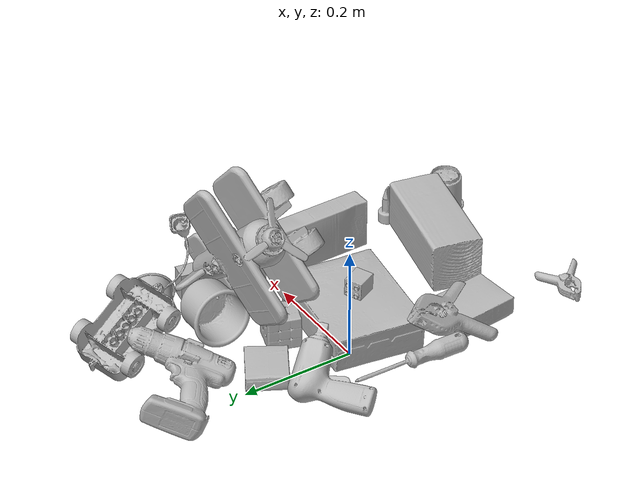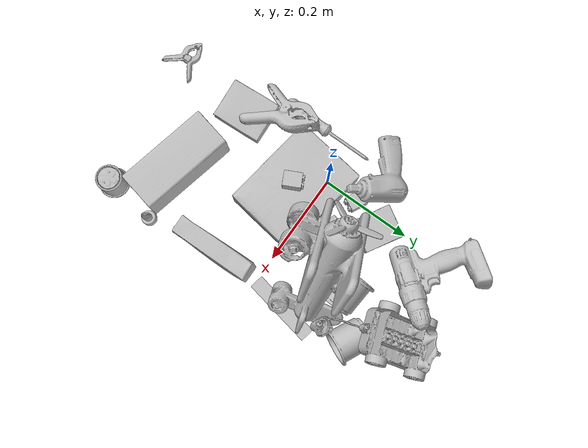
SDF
<sdf version="1.4">
  <world name="default">
    <light name="light1" type="point">
      <pose>0 0 1 0 0 0</pose>
      <diffuse>3 3 3 1</diffuse>
      <specular>3 3 3 1</specular>
    </light>
    <light name="light2" type="point">
      <pose>0 0.5 2 0 0 0</pose>
      <diffuse>1 1 1 1</diffuse>
      <specular>1 1 1 1</specular>
    </light>
    <light name="light3" type="point">
      <pose>0 0.5 2 0 0 0</pose>
      <diffuse>3 3 3 1</diffuse>
      <specular>3 3 3 1</specular>
    </light>
    <scene>
      <ambient>0.7 0.7 0.7</ambient>
    </scene>
    <model name="box21">
      <link name="link_box21">
        <collision name="default">
          <geometry>
            <mesh>
              <uri>model://cracker_box/collision_meshes/collision.obj</uri>
              <scale>1.0 1.0 1.0</scale>
            </mesh>
          </geometry>
          <surface>
            <friction>
              <ode>
                <mu>0.5</mu>
                <mu2>0.5</mu2>
              </ode>
            </friction>
          <contact>
        <ode>
            <max_vel>0</max_vel>
            <min_depth>0.0001</min_depth>
            <kp>1e8</kp>
        </ode>
    </contact></surface>
        </collision>
        <visual name="default">
          <geometry>
            <mesh>
              <uri>model://cracker_box/visual_meshes/visual.dae</uri>
              <scale>1.0 1.0 1.0</scale>
            </mesh>
          </geometry>
        </visual>
        <inertial>
          <mass>2.2869980335235596</mass>
          <pose>0.0009464151225984097 0.0002543425071053207 -0.0017029535956680775 -0.0003162075418873318 -0.011106487737663914 0.0025467956997025456</pose>
          <inertia>
            <ixx>0.005817102</ixx>
            <iyy>0.009605178</iyy>
            <izz>0.013707472</izz>
            <ixy>0</ixy>
            <ixz>0</ixz>
            <iyz>0</iyz>
          </inertia>
        </inertial>
      </link>
      <pose>0.05608418211340904 -0.04272518306970596 0.03553152456879616 3.1371903894402067 -0.016545756410445596 -0.1419563407923448</pose>
    </model>
    <model name="box22">
      <link name="link_box22">
        <collision name="default">
          <geometry>
            <mesh>
              <uri>model://pudding_box/collision_meshes/collision.obj</uri>
              <scale>1.0 1.0 1.0</scale>
            </mesh>
          </geometry>
          <surface>
            <friction>
              <ode>
                <mu>0.5</mu>
                <mu2>0.5</mu2>
              </ode>
            </friction>
          <contact>
        <ode>
            <max_vel>0</max_vel>
            <min_depth>0.0001</min_depth>
            <kp>1e8</kp>
        </ode>
    </contact></surface>
        </collision>
        <visual name="default">
          <geometry>
            <mesh>
              <uri>model://pudding_box/visual_meshes/visual.dae</uri>
              <scale>1.0 1.0 1.0</scale>
            </mesh>
          </geometry>
        </visual>
        <inertial>
          <mass>0.5370154976844788</mass>
          <pose>0.0004894821904599667 0.0008067885646596551 -0.0005188827635720372 0.005213101796859606 -0.006603800100757192 0.02007981956729938</pose>
          <inertia>
            <ixx>0.0006070684</ixx>
            <iyy>0.00040843996</iyy>
            <izz>0.00089649507</izz>
            <ixy>0</ixy>
            <ixz>0</ixz>
            <iyz>0</iyz>
          </inertia>
        </inertial>
      </link>
      <pose>-0.020980894565582275 -0.2264954000711441 0.019725780934095383 0.0223496286787643 -0.01139225997813759 -3.0739742360767015</pose>
    </model>
    <model name="box23">
      <link name="link_box23">
        <collision name="default">
          <geometry>
            <mesh>
              <uri>model://jenga/collision_meshes/collision.obj</uri>
              <scale>1.0 1.0 1.0</scale>
            </mesh>
          </geometry>
          <surface>
            <friction>
              <ode>
                <mu>0.5</mu>
                <mu2>0.5</mu2>
              </ode>
            </friction>
          <contact>
        <ode>
            <max_vel>0</max_vel>
            <min_depth>0.0001</min_depth>
            <kp>1e8</kp>
        </ode>
    </contact></surface>
        </collision>
        <visual name="default">
          <geometry>
            <mesh>
              <uri>model://jenga/visual_meshes/visual.dae</uri>
              <scale>1.0 1.0 1.0</scale>
            </mesh>
          </geometry>
        </visual>
        <inertial>
          <mass>0.17325031757354736</mass>
          <pose>-2.502855807051674e-07 -0.0001025000965455547 -4.0923401684267446e-05 0.0 -7.34215461761844e-07 0.0</pose>
          <inertia>
            <ixx>4.7942573e-05</ixx>
            <iyy>0.00032485754</iyy>
            <izz>0.00034681303</izz>
            <ixy>0</ixy>
            <ixz>0</ixz>
            <iyz>0</iyz>
          </inertia>
        </inertial>
      </link>
      <pose>0.2737058699131012 0.07773884385824203 0.024702271446585655 1.5774984129765406 3.951186372165248e-06 1.3820653984583058</pose>
    </model>
    <model name="cup1">
      <link name="link_cup1">
        <collision name="default">
          <geometry>
            <mesh>
              <uri>model://c_cups/collision_meshes/collision.obj</uri>
              <scale>1.0 1.0 1.0</scale>
            </mesh>
          </geometry>
          <surface>
            <friction>
              <ode>
                <mu>0.5</mu>
                <mu2>0.5</mu2>
              </ode>
            </friction>
          <contact>
        <ode>
            <max_vel>0</max_vel>
            <min_depth>0.0001</min_depth>
            <kp>1e8</kp>
        </ode>
    </contact></surface>
        </collision>
        <visual name="default">
          <geometry>
            <mesh>
              <uri>model://c_cups/visual_meshes/visual.dae</uri>
              <scale>1.0 1.0 1.0</scale>
            </mesh>
          </geometry>
        </visual>
        <inertial>
          <mass>0.033937059342861176</mass>
          <pose>0.0007237257086671889 0.002015391131862998 -0.0012750985333696008 0.3021568203324006 0.0134615240317058 -0.08771816491093205</pose>
          <inertia>
            <ixx>2.5238536e-05</ixx>
            <iyy>2.4792533e-05</iyy>
            <izz>2.2320162e-05</izz>
            <ixy>0</ixy>
            <ixz>0</ixz>
            <iyz>0</iyz>
          </inertia>
        </inertial>
      </link>
      <pose>0.26424720883369446 -0.36712321639060974 0.03345847874879837 -3.141566254669418 -1.844844735758113e-05 0.7515508255159931</pose>
    </model>
    <model name="cup2">
      <link name="link_cup2">
        <collision name="default">
          <geometry>
            <mesh>
              <uri>model://f_cups/collision_meshes/collision.obj</uri>
              <scale>1.0 1.0 1.0</scale>
            </mesh>
          </geometry>
          <surface>
            <friction>
              <ode>
                <mu>0.5</mu>
                <mu2>0.5</mu2>
              </ode>
            </friction>
          <contact>
        <ode>
            <max_vel>0</max_vel>
            <min_depth>0.0001</min_depth>
            <kp>1e8</kp>
        </ode>
    </contact></surface>
        </collision>
        <visual name="default">
          <geometry>
            <mesh>
              <uri>model://f_cups/visual_meshes/visual.dae</uri>
              <scale>1.0 1.0 1.0</scale>
            </mesh>
          </geometry>
        </visual>
        <inertial>
          <mass>0.10278050601482391</mass>
          <pose>-0.003171466989442706 -0.0006240068469196558 -0.003655537962913513 0.7862283183637603 -0.2607933822369466 -0.1823733550036739</pose>
          <inertia>
            <ixx>9.661645e-05</ixx>
            <iyy>0.00010135175</iyy>
            <izz>0.000105510015</izz>
            <ixy>0</ixy>
            <ixz>0</ixz>
            <iyz>0</iyz>
          </inertia>
        </inertial>
      </link>
      <pose>0.2446931153535843 0.22683578729629517 0.03712514042854309 1.467838776976157 0.02605379706472619 1.1082995658050698</pose>
    </model>
    <model name="box11">
      <link name="link_box11">
        <collision name="default">
          <geometry>
            <mesh>
              <uri>model://wood_block/collision_meshes/collision.obj</uri>
              <scale>1.0 1.0 1.0</scale>
            </mesh>
          </geometry>
          <surface>
            <friction>
              <ode>
                <mu>0.5</mu>
                <mu2>0.5</mu2>
              </ode>
            </friction>
          <contact>
        <ode>
            <max_vel>0</max_vel>
            <min_depth>0.0001</min_depth>
            <kp>1e8</kp>
        </ode>
    </contact></surface>
        </collision>
        <visual name="default">
          <geometry>
            <mesh>
              <uri>model://wood_block/visual_meshes/visual.dae</uri>
              <scale>1.0 1.0 1.0</scale>
            </mesh>
          </geometry>
        </visual>
        <inertial>
          <mass>2.321592330932617</mass>
          <pose>-5.813315056002466e-06 -0.000570809468626976 0.0002640858292579651 -0.052209755297172346 -0.005192694580027673 -0.006861376555374886</pose>
          <inertia>
            <ixx>0.0031066423</ixx>
            <iyy>0.009813884</iyy>
            <izz>0.009777175</izz>
            <ixy>0</ixy>
            <ixz>0</ixz>
            <iyz>0</iyz>
          </inertia>
        </inertial>
      </link>
      <pose>0.15636275708675385 -0.27408137917518616 0.0452585332095623 -0.005208037128941541 0.005718877383582208 2.9222755555601134</pose>
    </model>
    <model name="box12">
      <link name="link_box12">
        <collision name="default">
          <geometry>
            <mesh>
              <uri>model://gelatin_box/collision_meshes/collision.obj</uri>
              <scale>1.0 1.0 1.0</scale>
            </mesh>
          </geometry>
          <surface>
            <friction>
              <ode>
                <mu>0.5</mu>
                <mu2>0.5</mu2>
              </ode>
            </friction>
          <contact>
        <ode>
            <max_vel>0</max_vel>
            <min_depth>0.0001</min_depth>
            <kp>1e8</kp>
        </ode>
    </contact></surface>
        </collision>
        <visual name="default">
          <geometry>
            <mesh>
              <uri>model://gelatin_box/visual_meshes/visual.dae</uri>
              <scale>1.0 1.0 1.0</scale>
            </mesh>
          </geometry>
        </visual>
        <inertial>
          <mass>0.2263340801000595</mass>
          <pose>0.0004319618456065655 0.00011156871914863586 -0.00036403207923285663 -0.001050371981036731 -0.004755818689382226 0.016440561334450605</pose>
          <inertia>
            <ixx>0.00015977336</ixx>
            <iyy>0.00011412529</iyy>
            <izz>0.00024321067</izz>
            <ixy>0</ixy>
            <ixz>0</ixz>
            <iyz>0</iyz>
          </inertia>
        </inertial>
      </link>
      <pose>0.024053536355495453 0.14357012510299683 0.01458064280450344 -3.1258656872719555 -0.02571926733954206 -2.0906339021334013</pose>
    </model>
    <model name="box13">
      <link name="link_box13">
        <collision name="default">
          <geometry>
            <mesh>
              <uri>model://sugar_box/collision_meshes/collision.obj</uri>
              <scale>1.0 1.0 1.0</scale>
            </mesh>
          </geometry>
          <surface>
            <friction>
              <ode>
                <mu>0.5</mu>
                <mu2>0.5</mu2>
              </ode>
            </friction>
          <contact>
        <ode>
            <max_vel>0</max_vel>
            <min_depth>0.0001</min_depth>
            <kp>1e8</kp>
        </ode>
    </contact></surface>
        </collision>
        <visual name="default">
          <geometry>
            <mesh>
              <uri>model://sugar_box/visual_meshes/visual.dae</uri>
              <scale>1.0 1.0 1.0</scale>
            </mesh>
          </geometry>
        </visual>
        <inertial>
          <mass>0.4976349174976349</mass>
          <pose>0.0010343727190047503 3.849109634757042e-05 -0.00036364805418998003 -0.0004046263004245651 0.001050663405794887 0.002615379021776999</pose>
          <inertia>
            <ixx>0.0004146281</ixx>
            <iyy>0.0013401629</iyy>
            <izz>0.0016043353</izz>
            <ixy>0</ixy>
            <ixz>0</ixz>
            <iyz>0</iyz>
          </inertia>
        </inertial>
      </link>
      <pose>0.256621390581131 -0.10365595668554306 0.04645008221268654 1.5710196369285763 -4.011402469461751e-05 1.5889302969798071</pose>
    </model>
    <model name="box14">
      <link name="link_box14">
        <collision name="default">
          <geometry>
            <mesh>
              <uri>model://rubiks_cube/collision_meshes/collision.obj</uri>
              <scale>1.0 1.0 1.0</scale>
            </mesh>
          </geometry>
          <surface>
            <friction>
              <ode>
                <mu>0.5</mu>
                <mu2>0.5</mu2>
              </ode>
            </friction>
          <contact>
        <ode>
            <max_vel>0</max_vel>
            <min_depth>0.0001</min_depth>
            <kp>1e8</kp>
        </ode>
    </contact></surface>
        </collision>
        <visual name="default">
          <geometry>
            <mesh>
              <uri>model://rubiks_cube/visual_meshes/visual.dae</uri>
              <scale>1.0 1.0 1.0</scale>
            </mesh>
          </geometry>
        </visual>
        <inertial>
          <mass>0.2531126141548157</mass>
          <pose>2.6721041649580002e-05 5.2569666877388954e-05 -7.264316536748083e-06 -0.05467274129792389 -0.0981396008906979 -0.0344563195746163</pose>
          <inertia>
            <ixx>0.00013986173</ixx>
            <iyy>0.00013920949</iyy>
            <izz>0.00014102072</izz>
            <ixy>0</ixy>
            <ixz>0</ixz>
            <iyz>0</iyz>
          </inertia>
        </inertial>
      </link>
      <pose>0.09248214960098267 0.0728963315486908 0.029375482350587845 1.5694986482404913 -0.025579135205643113 1.2433518818847311</pose>
    </model>
    <model name="cup15">
      <link name="link_cup15">
        <collision name="default">
          <geometry>
            <mesh>
              <uri>model://j_cups/collision_meshes/collision.obj</uri>
              <scale>1.0 1.0 1.0</scale>
            </mesh>
          </geometry>
          <surface>
            <friction>
              <ode>
                <mu>0.5</mu>
                <mu2>0.5</mu2>
              </ode>
            </friction>
          <contact>
        <ode>
            <max_vel>0</max_vel>
            <min_depth>0.0001</min_depth>
            <kp>1e8</kp>
        </ode>
    </contact></surface>
        </collision>
        <visual name="default">
          <geometry>
            <mesh>
              <uri>model://j_cups/visual_meshes/visual.dae</uri>
              <scale>1.0 1.0 1.0</scale>
            </mesh>
          </geometry>
        </visual>
        <inertial>
          <mass>0.12765173614025116</mass>
          <pose>0.0006164864171296358 0.0005398980574682355 -0.0013479006011039019 0.030303852295551513 0.03757989298695449 0.4386938541947324</pose>
          <inertia>
            <ixx>0.00018743309</ixx>
            <iyy>0.00018938213</iyy>
            <izz>0.0002160715</izz>
            <ixy>0</ixy>
            <ixz>0</ixz>
            <iyz>0</iyz>
          </inertia>
        </inertial>
      </link>
      <pose>0.16930647194385529 0.15688706934452057 0.047346387058496475 1.4154647207995092 -0.6376813883536494 -1.5335800209940338</pose>
    </model>
    <model name="toy1">
      <link name="link_toy1">
        <collision name="default">
          <geometry>
            <mesh>
              <uri>model://f_lego_duplo/collision_meshes/collision.obj</uri>
              <scale>1.0 1.0 1.0</scale>
            </mesh>
          </geometry>
          <surface>
            <friction>
              <ode>
                <mu>0.5</mu>
                <mu2>0.5</mu2>
              </ode>
            </friction>
          <contact>
        <ode>
            <max_vel>0</max_vel>
            <min_depth>0.0001</min_depth>
            <kp>1e8</kp>
        </ode>
    </contact></surface>
        </collision>
        <visual name="default">
          <geometry>
            <mesh>
              <uri>model://f_lego_duplo/visual_meshes/visual.dae</uri>
              <scale>1.0 1.0 1.0</scale>
            </mesh>
          </geometry>
        </visual>
        <inertial>
          <mass>0.04013235494494438</mass>
          <pose>2.369376306887716e-05 0.00013393163681030273 0.0018837876850739121 0.029838734112773806 -0.014424842824784668 -0.6756708500035773</pose>
          <inertia>
            <ixx>8.480189e-06</ixx>
            <iyy>8.555736e-06</iyy>
            <izz>7.361164e-06</izz>
            <ixy>0</ixy>
            <ixz>0</ixz>
            <iyz>0</iyz>
          </inertia>
        </inertial>
      </link>
      <pose>0.052375394850969315 -0.050816431641578674 0.08801957964897156 1.4832453032026465 -1.5282756240047362 -2.591456923571942</pose>
    </model>
    <model name="toy2">
      <link name="link_toy2">
        <collision name="default">
          <geometry>
            <mesh>
              <uri>model://e_toy_airplane/collision_meshes/collision.obj</uri>
              <scale>1.0 1.0 1.0</scale>
            </mesh>
          </geometry>
          <surface>
            <friction>
              <ode>
                <mu>0.5</mu>
                <mu2>0.5</mu2>
              </ode>
            </friction>
          <contact>
        <ode>
            <max_vel>0</max_vel>
            <min_depth>0.0001</min_depth>
            <kp>1e8</kp>
        </ode>
    </contact></surface>
        </collision>
        <visual name="default">
          <geometry>
            <mesh>
              <uri>model://e_toy_airplane/visual_meshes/visual.dae</uri>
              <scale>1.0 1.0 1.0</scale>
            </mesh>
          </geometry>
        </visual>
        <inertial>
          <mass>0.030105752870440483</mass>
          <pose>0.00011740480840671808 -2.248285454697907e-05 -0.011187204159796238 0.0055184715057391125 0.009228317867647443 0.150413097465581</pose>
          <inertia>
            <ixx>9.18862e-06</ixx>
            <iyy>9.094625e-06</iyy>
            <izz>2.761542e-06</izz>
            <ixy>0</ixy>
            <ixz>0</ixz>
            <iyz>0</iyz>
          </inertia>
        </inertial>
      </link>
      <pose>0.28214916586875916 -0.2602044939994812 0.03321237117052078 2.1560869549516874e-05 -0.00022464985755369914 0.4172478704046302</pose>
    </model>
    <model name="toy3">
      <link name="link_toy3">
        <collision name="default">
          <geometry>
            <mesh>
              <uri>model://g_lego_duplo/collision_meshes/collision.obj</uri>
              <scale>1.0 1.0 1.0</scale>
            </mesh>
          </geometry>
          <surface>
            <friction>
              <ode>
                <mu>0.5</mu>
                <mu2>0.5</mu2>
              </ode>
            </friction>
          <contact>
        <ode>
            <max_vel>0</max_vel>
            <min_depth>0.0001</min_depth>
            <kp>1e8</kp>
        </ode>
    </contact></surface>
        </collision>
        <visual name="default">
          <geometry>
            <mesh>
              <uri>model://g_lego_duplo/visual_meshes/visual.dae</uri>
              <scale>1.0 1.0 1.0</scale>
            </mesh>
          </geometry>
        </visual>
        <inertial>
          <mass>0.4529305100440979</mass>
          <pose>-0.050047703087329865 0.0017554633086547256 0.0038806775119155645 0.010963008114131517 0.03810824387856379 -0.09653032518797504</pose>
          <inertia>
            <ixx>0.00065630145</ixx>
            <iyy>0.0019842102</iyy>
            <izz>0.0024823209</izz>
            <ixy>0</ixy>
            <ixz>0</ixz>
            <iyz>0</iyz>
          </inertia>
        </inertial>
      </link>
      <pose>0.2077503651380539 0.2574131488800049 0.08616738021373749 -2.980029796509186 -0.4627927529293816 -1.2985583747367173</pose>
    </model>
    <model name="toy4">
      <link name="link_toy4">
        <collision name="default">
          <geometry>
            <mesh>
              <uri>model://b_lego_duplo/collision_meshes/collision.obj</uri>
              <scale>1.0 1.0 1.0</scale>
            </mesh>
          </geometry>
          <surface>
            <friction>
              <ode>
                <mu>0.5</mu>
                <mu2>0.5</mu2>
              </ode>
            </friction>
          <contact>
        <ode>
            <max_vel>0</max_vel>
            <min_depth>0.0001</min_depth>
            <kp>1e8</kp>
        </ode>
    </contact></surface>
        </collision>
        <visual name="default">
          <geometry>
            <mesh>
              <uri>model://b_lego_duplo/visual_meshes/visual.dae</uri>
              <scale>1.0 1.0 1.0</scale>
            </mesh>
          </geometry>
        </visual>
        <inertial>
          <mass>0.018499748781323433</mass>
          <pose>-0.00011053003981942311 -9.15247255761642e-06 0.001929429592564702 -0.037494549291744686 -0.026354734626349716 0.4518828938821803</pose>
          <inertia>
            <ixx>3.786112e-06</ixx>
            <iyy>3.8115643e-06</iyy>
            <izz>3.3733036e-06</izz>
            <ixy>0</ixy>
            <ixz>0</ixz>
            <iyz>0</iyz>
          </inertia>
        </inertial>
      </link>
      <pose>0.0021965354681015015 0.07306746393442154 0.016179900616407394 0.04881541973582449 -1.5624099186709375 2.6461698681508703</pose>
    </model>
    <model name="toy5">
      <link name="link_toy5">
        <collision name="default">
          <geometry>
            <mesh>
              <uri>model://b_toy_airplane/collision_meshes/collision.obj</uri>
              <scale>1.0 1.0 1.0</scale>
            </mesh>
          </geometry>
          <surface>
            <friction>
              <ode>
                <mu>0.5</mu>
                <mu2>0.5</mu2>
              </ode>
            </friction>
          <contact>
        <ode>
            <max_vel>0</max_vel>
            <min_depth>0.0001</min_depth>
            <kp>1e8</kp>
        </ode>
    </contact></surface>
        </collision>
        <visual name="default">
          <geometry>
            <mesh>
              <uri>model://b_toy_airplane/visual_meshes/visual.dae</uri>
              <scale>1.0 1.0 1.0</scale>
            </mesh>
          </geometry>
        </visual>
        <inertial>
          <mass>0.38904744386672974</mass>
          <pose>0.00508136348798871 0.004015582147985697 0.00954306498169899 -0.040018071915393034 -0.04022181905785318 -0.5601502897874057</pose>
          <inertia>
            <ixx>0.00072227366</ixx>
            <iyy>0.0002886998</iyy>
            <izz>0.0008985803</izz>
            <ixy>0</ixy>
            <ixz>0</ixz>
            <iyz>0</iyz>
          </inertia>
        </inertial>
      </link>
      <pose>-0.07141989469528198 0.09347126632928848 0.025333859026432037 0.11828929186060226 -0.4669023196556516 -0.889362055632537</pose>
    </model>
    <model name="toy6">
      <link name="link_toy6">
        <collision name="default">
          <geometry>
            <mesh>
              <uri>model://a_toy_airplane/collision_meshes/collision.obj</uri>
              <scale>1.0 1.0 1.0</scale>
            </mesh>
          </geometry>
          <surface>
            <friction>
              <ode>
                <mu>0.5</mu>
                <mu2>0.5</mu2>
              </ode>
            </friction>
          <contact>
        <ode>
            <max_vel>0</max_vel>
            <min_depth>0.0001</min_depth>
            <kp>1e8</kp>
        </ode>
    </contact></surface>
        </collision>
        <visual name="default">
          <geometry>
            <mesh>
              <uri>model://a_toy_airplane/visual_meshes/visual.dae</uri>
              <scale>1.0 1.0 1.0</scale>
            </mesh>
          </geometry>
        </visual>
        <inertial>
          <mass>2.344027519226074</mass>
          <pose>0.025165099650621414 -0.003707322059199214 -0.0011962436838075519 -0.012016950381748406 -0.14663507119063698 0.004149124939747771</pose>
          <inertia>
            <ixx>0.008512287</ixx>
            <iyy>0.012404123</iyy>
            <izz>0.014523712</izz>
            <ixy>0</ixy>
            <ixz>0</ixz>
            <iyz>0</iyz>
          </inertia>
        </inertial>
      </link>
      <pose>0.1733301728963852 0.10563645511865616 0.14347699284553528 1.546143986072972 -0.7224909777764336 -2.7468494869767275</pose>
    </model>
    <model name="hardware1">
      <link name="link_hardware1">
        <collision name="default">
          <geometry>
            <mesh>
              <uri>model://power_drill/collision_meshes/collision.obj</uri>
              <scale>1.0 1.0 1.0</scale>
            </mesh>
          </geometry>
          <surface>
            <friction>
              <ode>
                <mu>0.5</mu>
                <mu2>0.5</mu2>
              </ode>
            </friction>
          <contact>
        <ode>
            <max_vel>0</max_vel>
            <min_depth>0.0001</min_depth>
            <kp>1e8</kp>
        </ode>
    </contact></surface>
        </collision>
        <visual name="default">
          <geometry>
            <mesh>
              <uri>model://power_drill/visual_meshes/visual.dae</uri>
              <scale>1.0 1.0 1.0</scale>
            </mesh>
          </geometry>
        </visual>
        <inertial>
          <mass>0.3504050374031067</mass>
          <pose>-0.014780547469854355 0.014369429089128971 0.0012414171360433102 0.0046091621872236125 0.004073022304059966 -0.18362696816981472</pose>
          <inertia>
            <ixx>0.001427917</ixx>
            <iyy>0.0005618108</iyy>
            <izz>0.0018858167</izz>
            <ixy>0</ixy>
            <ixz>0</ixz>
            <iyz>0</iyz>
          </inertia>
        </inertial>
      </link>
      <pose>0.03766953945159912 0.31019991636276245 0.04991069436073303 3.10246321060254 -0.37060660772736903 0.8597458236328784</pose>
    </model>
    <model name="hardware2">
      <link name="link_hardware2">
        <collision name="default">
          <geometry>
            <mesh>
              <uri>model://phillips_screwdriver/collision_meshes/collision.obj</uri>
              <scale>1.0 1.0 1.0</scale>
            </mesh>
          </geometry>
          <surface>
            <friction>
              <ode>
                <mu>0.5</mu>
                <mu2>0.5</mu2>
              </ode>
            </friction>
          <contact>
        <ode>
            <max_vel>0</max_vel>
            <min_depth>0.0001</min_depth>
            <kp>1e8</kp>
        </ode>
    </contact></surface>
        </collision>
        <visual name="default">
          <geometry>
            <mesh>
              <uri>model://phillips_screwdriver/visual_meshes/visual.dae</uri>
              <scale>1.0 1.0 1.0</scale>
            </mesh>
          </geometry>
        </visual>
        <inertial>
          <mass>0.06613585352897644</mass>
          <pose>-0.04777182638645172 0.0010362302418798208 -0.000455554953077808 -0.157256923583716 0.005850995849984215 -0.0021567369270283215</pose>
          <inertia>
            <ixx>7.770284e-06</ixx>
            <iyy>9.742579e-05</iyy>
            <izz>9.7508564e-05</izz>
            <ixy>0</ixy>
            <ixz>0</ixz>
            <iyz>0</iyz>
          </inertia>
        </inertial>
      </link>
      <pose>-0.08776441216468811 -0.06603243947029114 0.018213490024209023 -1.7898142791741998 -0.0019652096762834206 1.561949507935197</pose>
    </model>
    <model name="hardware3">
      <link name="link_hardware3">
        <collision name="default">
          <geometry>
            <mesh>
              <uri>model://large_clamp/collision_meshes/collision.obj</uri>
              <scale>1.0 1.0 1.0</scale>
            </mesh>
          </geometry>
          <surface>
            <friction>
              <ode>
                <mu>0.5</mu>
                <mu2>0.5</mu2>
              </ode>
            </friction>
          <contact>
        <ode>
            <max_vel>0</max_vel>
            <min_depth>0.0001</min_depth>
            <kp>1e8</kp>
        </ode>
    </contact></surface>
        </collision>
        <visual name="default">
          <geometry>
            <mesh>
              <uri>model://large_clamp/visual_meshes/visual.dae</uri>
              <scale>1.0 1.0 1.0</scale>
            </mesh>
          </geometry>
        </visual>
        <inertial>
          <mass>0.0812491774559021</mass>
          <pose>0.00636935792863369 0.00035856812610290945 -0.0001839803153416142 -0.0021330695247891995 0.009671592144941876 0.026633191629386817</pose>
          <inertia>
            <ixx>7.1684015e-05</ixx>
            <iyy>0.00013613176</iyy>
            <izz>0.00019693196</izz>
            <ixy>0</ixy>
            <ixz>0</ixz>
            <iyz>0</iyz>
          </inertia>
        </inertial>
      </link>
      <pose>-0.058423567563295364 -0.15002739429473877 0.05801459401845932 2.732606596931881 -0.37971672276059015 1.7500945206347476</pose>
    </model>
    <model name="hardware4">
      <link name="link_hardware4">
        <collision name="default">
          <geometry>
            <mesh>
              <uri>model://medium_clamp/collision_meshes/collision.obj</uri>
              <scale>1.0 1.0 1.0</scale>
            </mesh>
          </geometry>
          <surface>
            <friction>
              <ode>
                <mu>0.5</mu>
                <mu2>0.5</mu2>
              </ode>
            </friction>
          <contact>
        <ode>
            <max_vel>0</max_vel>
            <min_depth>0.0001</min_depth>
            <kp>1e8</kp>
        </ode>
    </contact></surface>
        </collision>
        <visual name="default">
          <geometry>
            <mesh>
              <uri>model://medium_clamp/visual_meshes/visual.dae</uri>
              <scale>1.0 1.0 1.0</scale>
            </mesh>
          </geometry>
        </visual>
        <inertial>
          <mass>0.04165364429354668</mass>
          <pose>0.0053909956477582455 0.00039532381924800575 -0.0001222159044118598 -0.0012269202016338824 0.0025845009837354585 0.038207769727488725</pose>
          <inertia>
            <ixx>1.134795e-05</ixx>
            <iyy>1.6514476e-05</iyy>
            <izz>2.5437248e-05</izz>
            <ixy>0</ixy>
            <ixz>0</ixz>
            <iyz>0</iyz>
          </inertia>
        </inertial>
      </link>
      <pose>-0.041566286236047745 -0.40111640095710754 0.01353393029421568 0.07684153002392416 0.08544609190778149 3.0306328610673563</pose>
    </model>
  <physics type="ode">
      <max_contacts>50</max_contacts>
      <ode>
        <solver>
          <type>quick</type>
          <iters>75</iters>
        </solver>
        <constraints>
          <contact_max_correcting_vel>0</contact_max_correcting_vel>
          <contact_surface_layer>0</contact_surface_layer>
        </constraints>
      </ode>
    </physics></world>
</sdf>
